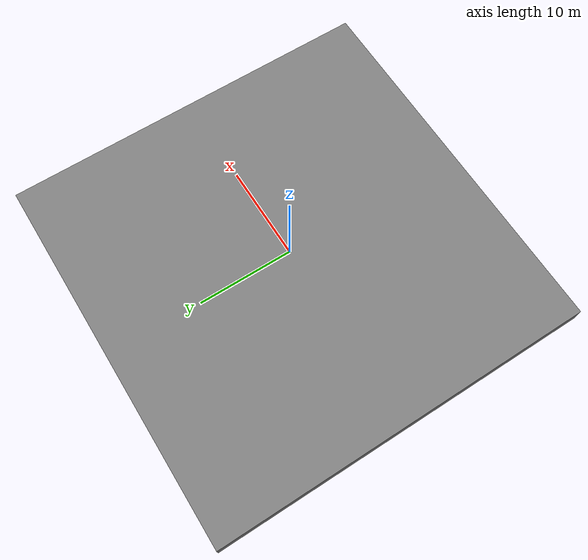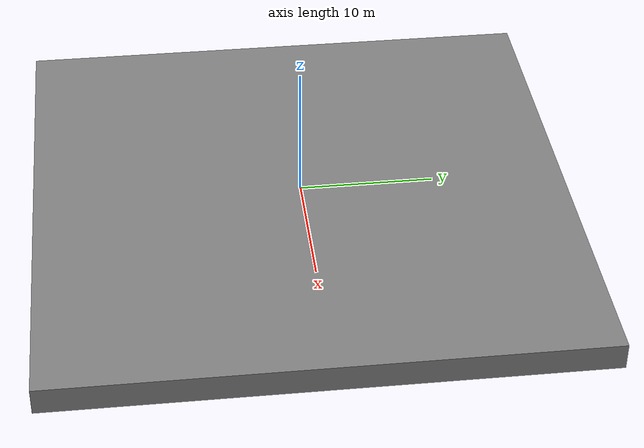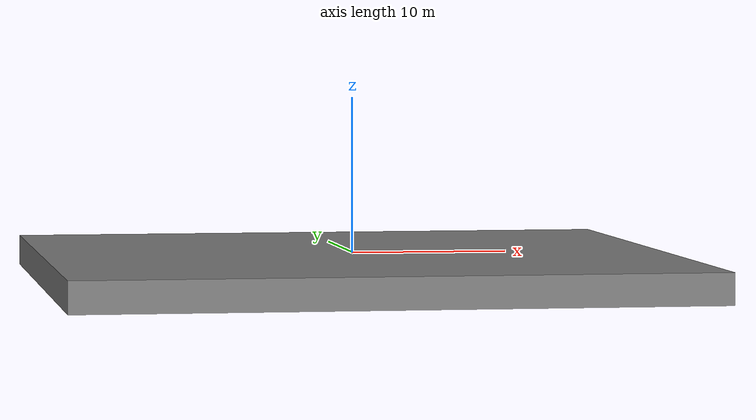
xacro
<robot xmlns:xacro="http://www.ros.org/wiki/xacro" name="planar_world" >

  <link name="ground_plane">
    <!--
    Inertia data is arbitrary. Its purpose here is to evade the
         joint-welding checks in RigidBodyTree.cpp. The resulting world-object
         joint should be a full 6DF floating joint.
    -->
    <visual>
      <origin xyz="0 0 -1" rpy="0 0 0" />
      <geometry>
        <box size="40.0 40.0 2.0" />
      </geometry>
      <material name="gray">
        <color rgba="0.5 0.5 0.5 1" />
      </material>
    </visual>
    <collision name="world_link_collision">
      <origin xyz="0 0 -1" rpy="0 0 0" />
      <geometry>
        <box size="40.0 40.0 2.0" />
      </geometry>
    </collision>
  </link>

</robot>
